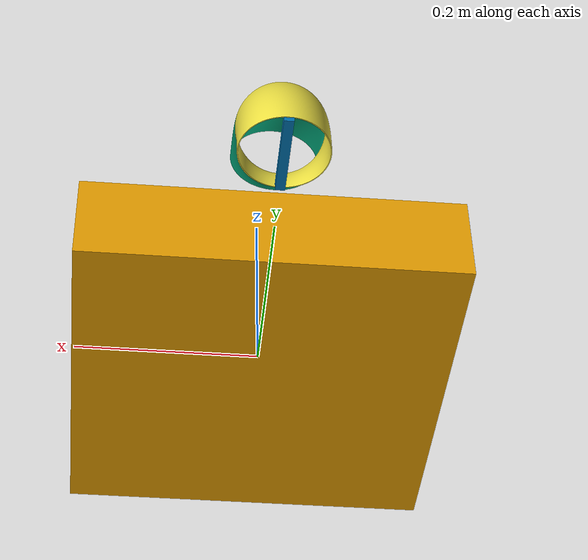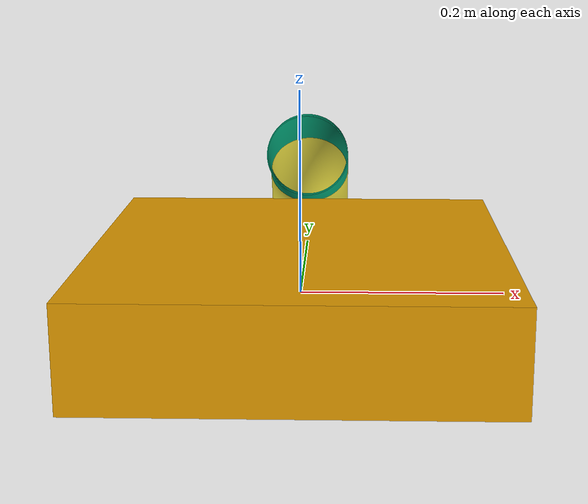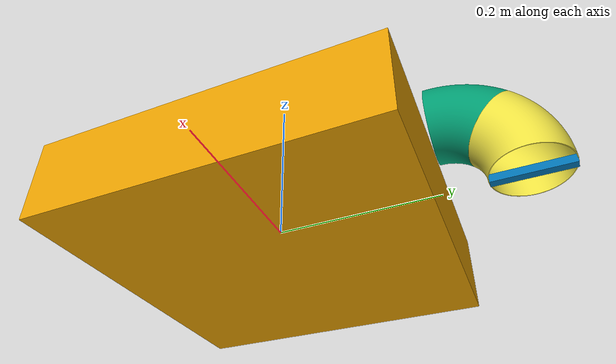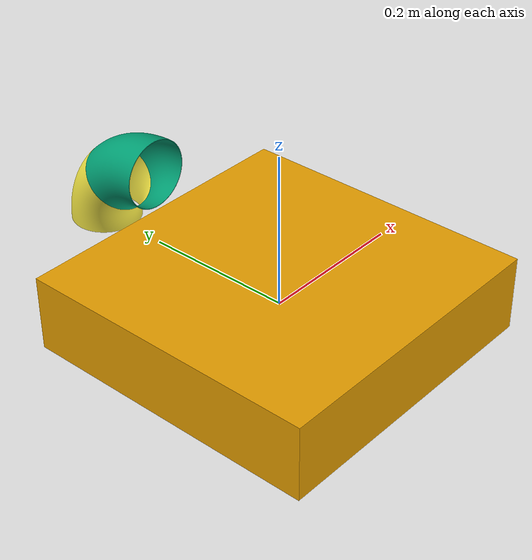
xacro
<?xml version="1.0"?>
<robot xmlns:xacro="http://www.ros.org/wiki/xacro" name="swivel_nozzle">

    <!-- Macros definition -->
    <xacro:macro name="nozzle" params="nozzle_name">
        <link name="${nozzle_name}">
            <visual>
                <geometry>
                    <mesh filename="package://avero_sim/meshes/NozzleV1.stl" scale="0.001 0.001 0.001"/>
                </geometry>
            </visual>
            <collision>
                <geometry>
                    <mesh filename="package://avero_sim/meshes/NozzleV1.stl" scale="0.001 0.001 0.001"/>
                </geometry>
            </collision>
            <inertial>
                <mass value="0.6"/>
                <inertia ixx="0.01" ixy="0.0" ixz="0.0" iyy="0.01" iyz="0.0" izz="0.01"/>
            </inertial>
        </link>
    </xacro:macro>

    <xacro:macro name="nozzle_joint" params="parent child *origin">
        <joint name="${parent}_to_${child}" type="revolute">
            <xacro:insert_block name="origin" />
            <parent link="${parent}"/>
            <child link="${child}"/>
            <axis xyz="0 1 0"/>
            <limit lower="-62.8" upper="62.8" velocity="50.0" effort="1000.0"/>
        </joint>
    </xacro:macro>

    <!-- frame and base_footprint Definition -->
    <link name="frame">
        <visual>
            <geometry>
                <box size="0.4 0.4 0.1"/>
            </geometry>
        </visual>
        <collision>
            <geometry>
                <box size="0.4 0.4 0.1"/>
            </geometry>
        </collision>
         <inertial>
            <mass value="10"/>
            <inertia ixx="0.01" ixy="0.0" ixz="0.0" iyy="0.01" iyz="0.0" izz="0.01"/>
        </inertial>
    </link>

    <link name="base_footprint">
    </link>

    <joint name="base_joint" type="fixed">
        <origin xyz="0.0 0.0 0.0" rpy="0.0 0.0 0.0"/>
        <parent link="base_footprint"/>
        <child link="frame"/>
    </joint>

    <!-- 2 nozzles -->
    <xacro:nozzle nozzle_name="nozzle_1a"/>
    <xacro:nozzle nozzle_name="nozzle_1b"/>

    <!-- 2 joints -->
    <xacro:nozzle_joint parent="frame" child="nozzle_1a">
        <origin xyz="0 0.2 0.1" rpy="0 1.5708 0"/>
    </xacro:nozzle_joint>
    <xacro:nozzle_joint parent="nozzle_1a" child="nozzle_1b">
            <origin xyz="0.028 0.068 0" rpy="0 0 -0.7854"/>
    </xacro:nozzle_joint>

<!-- Definiton of ducted fan rotors -->
    <link name="rotor_1">
        <visual>
            <geometry>
                <box size="0.09 0.01 0.01" />
            </geometry>
        </visual>
        <collision>
            <geometry>
                <box size="0.01 0.005 0.005" />
            </geometry>
        </collision>
        <inertial>
            <mass value="0.0065"/>
            <inertia ixx="0.045" ixy="0.0" ixz="0.0" iyy="0.02" iyz="0.0" izz="0.003"/>
        </inertial>
    </link>

    <joint name="rotor_1_joint" type="continuous">
        <origin xyz="0.028 0.068 0" rpy="1.5708 0 -0.7854"/>
        <parent link="nozzle_1b"/>
        <child link="rotor_1"/>
        <axis xyz="0 0 1"/>
    </joint>

  <xacro:property name="thrust_constant" value="${6E-05}" />

  <!-- [kg m/s^2] !RPM FOR NOW! -->
  <xacro:property name="moment_constant" value="0.016" />
  <xacro:property name="time_constant_up" value="0.0125" />
  <!-- [s] TODO: -->
  <xacro:property name="time_constant_down" value="0.025" />
  <!-- [s] TODO: -->
  <xacro:property name="min_rot_velocity" value="100" />
  <xacro:property name="max_rot_velocity" value="1700" />
  <!-- [rad/s] -->  <!-- Velocity to produce 1 kg thrust -->
  <xacro:property name="rotor_drag_coefficient" value="${8.06428e-05}" />
  <!-- TODO:-->
  <xacro:property name="rolling_moment_coefficient" value="0.000001" />

  <xacro:property name="tilt_control_mode" value="position" />
  <xacro:property name="p_gain" value="1" />
  <xacro:property name="i_gain" value="0.0" />
  <xacro:property name="d_gain" value="35000" />
  <xacro:property name="servo_zero_offset" value="0.0" />

  <!-- Added from stork_body.xacro -->
  <xacro:property name="rotor_velocity_slowdown_sim" value="10" />

  <gazebo>
    <plugin name="multimotor_plugin" filename="librotors_gazebo_multimotor_plugin.so">
        <rotors>
            <rotor>
            <jointName>rotor_1_joint</jointName>
            <linkName>rotor_1</linkName>
            <spinDirection>ccw</spinDirection>
            <timeConstantUp>${time_constant_up}</timeConstantUp>
            <timeConstantDown>${time_constant_down}</timeConstantDown>
            <minRotVelocity>${min_rot_velocity}</minRotVelocity>
            <maxRotVelocity>${max_rot_velocity}</maxRotVelocity>
            <thrustConstant>${thrust_constant}</thrustConstant>
            <momentConstant>${moment_constant}</momentConstant>
            <rotorDragCoefficient>${rotor_drag_coefficient}</rotorDragCoefficient>
            <rollingMomentCoefficient>${rolling_moment_coefficient}</rollingMomentCoefficient>
            <rotorVelocitySlowdownSim>${rotor_velocity_slowdown_sim}</rotorVelocitySlowdownSim>
            </rotor>
        </rotors>
        <servos>
            <servo>
            <jointName>frame_to_nozzle_1a</jointName>
            <spinDirection>ccw</spinDirection>
            <controlMode>${tilt_control_mode}</controlMode>
            <maxRotVelocity>${10}</maxRotVelocity>
            <minRotPosition>${-pi*6}</minRotPosition>
            <maxRotPosition>${pi*6}</maxRotPosition>
            <zeroOffset>${servo_zero_offset}</zeroOffset>
            <joint_control_pid>
                <p>${p_gain}</p>
                <i>${i_gain}</i>
                <d>${d_gain}</d>
                <iMax>1.0</iMax>
                <iMin>-1.0</iMin>
                <cmdMax>2.0</cmdMax>
                <cmdMin>-2.0</cmdMin>
            </joint_control_pid>
            </servo>
            <servo>
            <jointName>nozzle_1a_to_nozzle_1b</jointName>
            <spinDirection>ccw</spinDirection>
            <controlMode>${tilt_control_mode}</controlMode>
            <maxRotVelocity>${10}</maxRotVelocity>
            <minRotPosition>${-pi*6}</minRotPosition>
            <maxRotPosition>${pi*6}</maxRotPosition>
            <zeroOffset>${servo_zero_offset}</zeroOffset>
            <joint_control_pid>
                <p>${p_gain}</p>
                <i>${i_gain}</i>
                <d>${d_gain}</d>
                <iMax>1.0</iMax>
                <iMin>-1.0</iMin>
                <cmdMax>2.0</cmdMax>
                <cmdMin>-2.0</cmdMin>
            </joint_control_pid>
            </servo>
        </servos>
    </plugin>
  </gazebo>

</robot>
